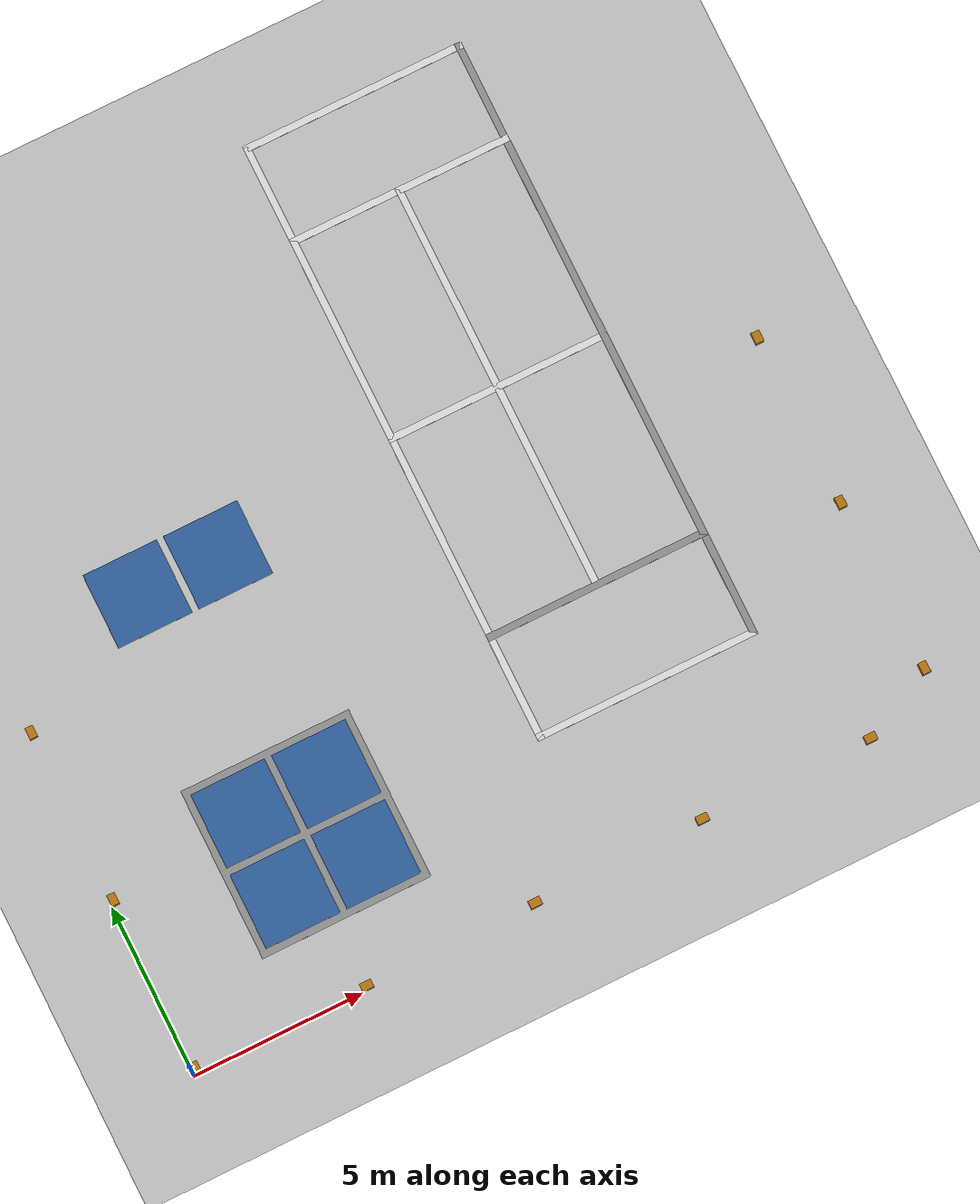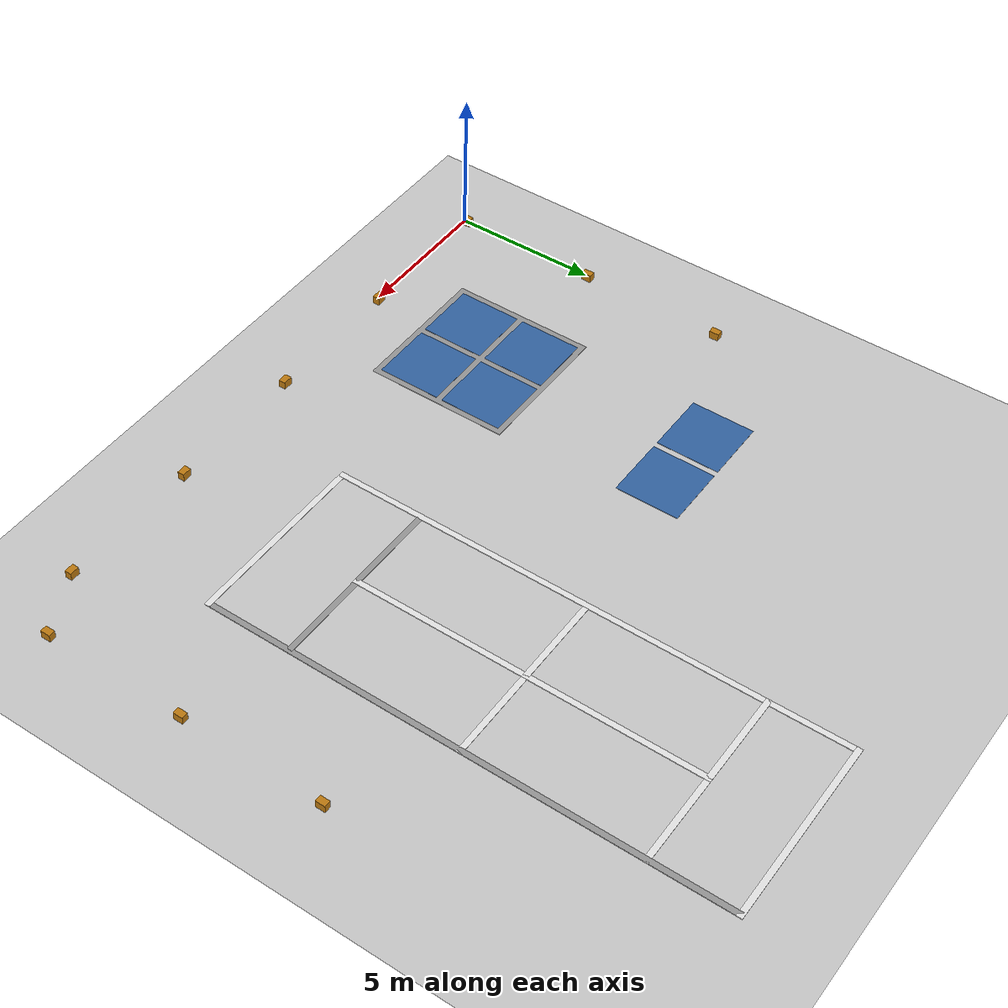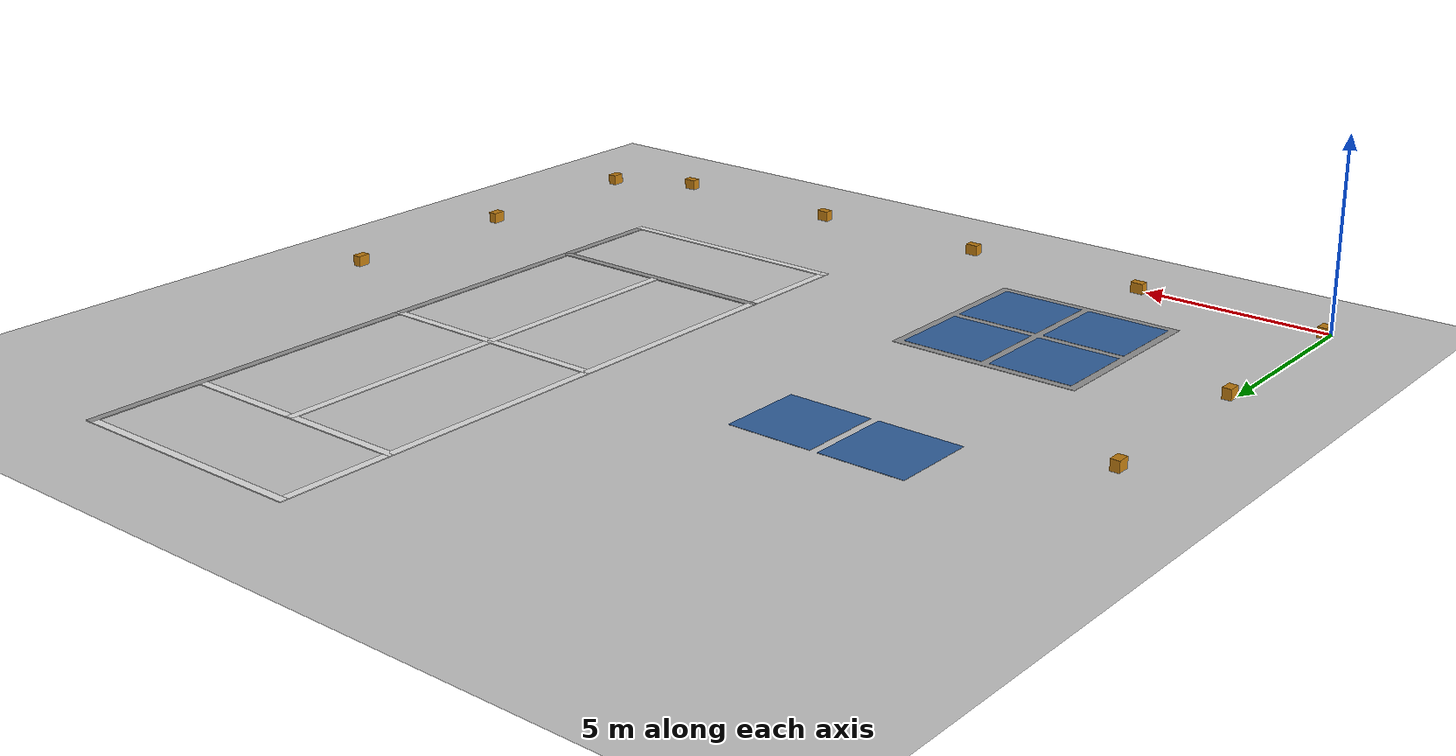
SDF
<sdf version="1.6">
 <world name="default">
  <model name="ground_plane">
   <static>1</static>
   <link name="link">
    <collision name="collision">
     <geometry><plane><normal>0 0 1</normal><size>100 100</size></plane></geometry>
     <surface>
      <contact><collide_bitmask>65535</collide_bitmask></contact>
      <friction><ode><mu>100</mu><mu2>50</mu2></ode></friction>
     </surface>
    </collision>
    <visual name="visual">
     <cast_shadows>0</cast_shadows>
     <geometry><plane><normal>0 0 1</normal><size>100 100</size></plane></geometry>
     <material>
      <script><uri>file://media/materials/scripts/gazebo.material</uri><name>Gazebo/Grey</name></script>
     </material>
    </visual>
   </link>
  </model>
  <model name="cardboard_marker">
   <link name="link">
    <inertial>
     <mass>1</mass>
     <inertia>
      <ixx>0.166667</ixx>
      <ixy>0</ixy>
      <ixz>0</ixz>
      <iyy>0.166667</iyy>
      <iyz>0</iyz>
      <izz>0.166667</izz>
     </inertia>
    </inertial>
    <visual name="visual">
     <geometry><box><size>0.335 0.232 0.28</size></box></geometry>
     <material>
      <script><name>Gazebo/Grey</name><uri>file://media/materials/scripts/gazebo.material</uri></script>
      <shader type="vertex"><normal_map>__default__</normal_map></shader>
      <ambient>0.757 0.49 0.067 1</ambient>
      <diffuse>0.757 0.49 0.067 1</diffuse>
      <specular>0.757 0.49 0.067 1</specular>
      <emissive>0 0 0 1</emissive>
     </material>
    </visual>
    <collision name="collision">
     <geometry><box><size>0.335 0.232 0.28</size></box></geometry>
     <surface>
      <friction>
       <ode><mu>1</mu><mu2>1</mu2><fdir1>0 0 0</fdir1><slip1>0</slip1><slip2>0</slip2></ode>
       <torsional>
        <coefficient>1</coefficient>
        <patch_radius>0</patch_radius>
        <surface_radius>0</surface_radius>
        <use_patch_radius>1</use_patch_radius>
        <ode><slip>0</slip></ode>
       </torsional>
      </friction>
      <bounce><restitution_coefficient>0</restitution_coefficient><threshold>1e+06</threshold></bounce>
      <contact>
       <collide_without_contact>0</collide_without_contact>
       <collide_without_contact_bitmask>1</collide_without_contact_bitmask>
       <collide_bitmask>1</collide_bitmask>
       <ode>
        <soft_cfm>0</soft_cfm>
        <soft_erp>0.2</soft_erp>
        <kp>1e+13</kp>
        <kd>1</kd>
        <max_vel>0.01</max_vel>
        <min_depth>0</min_depth>
       </ode>
       <bullet>
        <split_impulse>1</split_impulse>
        <split_impulse_penetration_threshold>-0.01</split_impulse_penetration_threshold>
        <soft_cfm>0</soft_cfm>
        <soft_erp>0.2</soft_erp>
        <kp>1e+13</kp>
        <kd>1</kd>
       </bullet>
      </contact>
     </surface>
    </collision>
   </link>
   <static>1</static>
   <pose>0.116 0.1675 0.14 0 0 -1.5708</pose>
  </model>
  <model name="cardboard_marker_clone">
   <link name="link">
    <inertial>
     <mass>1</mass>
     <inertia>
      <ixx>0.166667</ixx>
      <ixy>0</ixy>
      <ixz>0</ixz>
      <iyy>0.166667</iyy>
      <iyz>0</iyz>
      <izz>0.166667</izz>
     </inertia>
    </inertial>
    <visual name="visual">
     <geometry><box><size>0.335 0.232 0.28</size></box></geometry>
     <material>
      <script><name>Gazebo/Grey</name><uri>file://media/materials/scripts/gazebo.material</uri></script>
      <shader type="vertex"><normal_map>__default__</normal_map></shader>
      <ambient>0.757 0.49 0.067 1</ambient>
      <diffuse>0.757 0.49 0.067 1</diffuse>
      <specular>0.757 0.49 0.067 1</specular>
      <emissive>0 0 0 1</emissive>
     </material>
    </visual>
    <collision name="collision">
     <geometry><box><size>0.335 0.232 0.28</size></box></geometry>
     <surface>
      <friction>
       <ode><mu>1</mu><mu2>1</mu2><fdir1>0 0 0</fdir1><slip1>0</slip1><slip2>0</slip2></ode>
       <torsional>
        <coefficient>1</coefficient>
        <patch_radius>0</patch_radius>
        <surface_radius>0</surface_radius>
        <use_patch_radius>1</use_patch_radius>
        <ode><slip>0</slip></ode>
       </torsional>
      </friction>
      <bounce><restitution_coefficient>0</restitution_coefficient><threshold>1e+06</threshold></bounce>
      <contact>
       <collide_without_contact>0</collide_without_contact>
       <collide_without_contact_bitmask>1</collide_without_contact_bitmask>
       <collide_bitmask>1</collide_bitmask>
       <ode>
        <soft_cfm>0</soft_cfm>
        <soft_erp>0.2</soft_erp>
        <kp>1e+13</kp>
        <kd>1</kd>
        <max_vel>0.01</max_vel>
        <min_depth>0</min_depth>
       </ode>
       <bullet>
        <split_impulse>1</split_impulse>
        <split_impulse_penetration_threshold>-0.01</split_impulse_penetration_threshold>
        <soft_cfm>0</soft_cfm>
        <soft_erp>0.2</soft_erp>
        <kp>1e+13</kp>
        <kd>1</kd>
       </bullet>
      </contact>
     </surface>
    </collision>
   </link>
   <static>1</static>
   <pose>0.116 5.1675 0.14 0 0 -1.5708</pose>
  </model>
  <model name="cardboard_marker_clone_clone">
   <link name="link">
    <inertial>
     <mass>1</mass>
     <inertia>
      <ixx>0.166667</ixx>
      <ixy>0</ixy>
      <ixz>0</ixz>
      <iyy>0.166667</iyy>
      <iyz>0</iyz>
      <izz>0.166667</izz>
     </inertia>
    </inertial>
    <visual name="visual">
     <geometry><box><size>0.335 0.232 0.28</size></box></geometry>
     <material>
      <script><name>Gazebo/Grey</name><uri>file://media/materials/scripts/gazebo.material</uri></script>
      <shader type="vertex"><normal_map>__default__</normal_map></shader>
      <ambient>0.757 0.49 0.067 1</ambient>
      <diffuse>0.757 0.49 0.067 1</diffuse>
      <specular>0.757 0.49 0.067 1</specular>
      <emissive>0 0 0 1</emissive>
     </material>
    </visual>
    <collision name="collision">
     <geometry><box><size>0.335 0.232 0.28</size></box></geometry>
     <surface>
      <friction>
       <ode><mu>1</mu><mu2>1</mu2><fdir1>0 0 0</fdir1><slip1>0</slip1><slip2>0</slip2></ode>
       <torsional>
        <coefficient>1</coefficient>
        <patch_radius>0</patch_radius>
        <surface_radius>0</surface_radius>
        <use_patch_radius>1</use_patch_radius>
        <ode><slip>0</slip></ode>
       </torsional>
      </friction>
      <bounce><restitution_coefficient>0</restitution_coefficient><threshold>1e+06</threshold></bounce>
      <contact>
       <collide_without_contact>0</collide_without_contact>
       <collide_without_contact_bitmask>1</collide_without_contact_bitmask>
       <collide_bitmask>1</collide_bitmask>
       <ode>
        <soft_cfm>0</soft_cfm>
        <soft_erp>0.2</soft_erp>
        <kp>1e+13</kp>
        <kd>1</kd>
        <max_vel>0.01</max_vel>
        <min_depth>0</min_depth>
       </ode>
       <bullet>
        <split_impulse>1</split_impulse>
        <split_impulse_penetration_threshold>-0.01</split_impulse_penetration_threshold>
        <soft_cfm>0</soft_cfm>
        <soft_erp>0.2</soft_erp>
        <kp>1e+13</kp>
        <kd>1</kd>
       </bullet>
      </contact>
     </surface>
    </collision>
   </link>
   <static>1</static>
   <pose>0.116 10.1675 0.14 0 0 -1.5708</pose>
  </model>
  <model name="cardboard_marker_clone_clone_clone_clone_clone_clone_clone_clone_clone_clone">
   <link name="link">
    <inertial>
     <mass>1</mass>
     <inertia>
      <ixx>0.166667</ixx>
      <ixy>0</ixy>
      <ixz>0</ixz>
      <iyy>0.166667</iyy>
      <iyz>0</iyz>
      <izz>0.166667</izz>
     </inertia>
    </inertial>
    <visual name="visual">
     <geometry><box><size>0.335 0.232 0.28</size></box></geometry>
     <material>
      <script><name>Gazebo/Grey</name><uri>file://media/materials/scripts/gazebo.material</uri></script>
      <shader type="vertex"><normal_map>__default__</normal_map></shader>
      <ambient>0.757 0.49 0.067 1</ambient>
      <diffuse>0.757 0.49 0.067 1</diffuse>
      <specular>0.757 0.49 0.067 1</specular>
      <emissive>0 0 0 1</emissive>
     </material>
    </visual>
    <collision name="collision">
     <geometry><box><size>0.335 0.232 0.28</size></box></geometry>
     <surface>
      <friction>
       <ode><mu>1</mu><mu2>1</mu2><fdir1>0 0 0</fdir1><slip1>0</slip1><slip2>0</slip2></ode>
       <torsional>
        <coefficient>1</coefficient>
        <patch_radius>0</patch_radius>
        <surface_radius>0</surface_radius>
        <use_patch_radius>1</use_patch_radius>
        <ode><slip>0</slip></ode>
       </torsional>
      </friction>
      <bounce><restitution_coefficient>0</restitution_coefficient><threshold>1e+06</threshold></bounce>
      <contact>
       <collide_without_contact>0</collide_without_contact>
       <collide_without_contact_bitmask>1</collide_without_contact_bitmask>
       <collide_bitmask>1</collide_bitmask>
       <ode>
        <soft_cfm>0</soft_cfm>
        <soft_erp>0.2</soft_erp>
        <kp>1e+13</kp>
        <kd>1</kd>
        <max_vel>0.01</max_vel>
        <min_depth>0</min_depth>
       </ode>
       <bullet>
        <split_impulse>1</split_impulse>
        <split_impulse_penetration_threshold>-0.01</split_impulse_penetration_threshold>
        <soft_cfm>0</soft_cfm>
        <soft_erp>0.2</soft_erp>
        <kp>1e+13</kp>
        <kd>1</kd>
       </bullet>
      </contact>
     </surface>
    </collision>
   </link>
   <static>1</static>
   <pose>5.1675 0.116 0.14 0 0 -3.14158</pose>
  </model>
  <model name="cardboard_marker_clone_clone_clone_clone_clone_clone_clone_clone_clone_clone_clone">
   <link name="link">
    <inertial>
     <mass>1</mass>
     <inertia>
      <ixx>0.166667</ixx>
      <ixy>0</ixy>
      <ixz>0</ixz>
      <iyy>0.166667</iyy>
      <iyz>0</iyz>
      <izz>0.166667</izz>
     </inertia>
    </inertial>
    <visual name="visual">
     <geometry><box><size>0.335 0.232 0.28</size></box></geometry>
     <material>
      <script><name>Gazebo/Grey</name><uri>file://media/materials/scripts/gazebo.material</uri></script>
      <shader type="vertex"><normal_map>__default__</normal_map></shader>
      <ambient>0.757 0.49 0.067 1</ambient>
      <diffuse>0.757 0.49 0.067 1</diffuse>
      <specular>0.757 0.49 0.067 1</specular>
      <emissive>0 0 0 1</emissive>
     </material>
    </visual>
    <collision name="collision">
     <geometry><box><size>0.335 0.232 0.28</size></box></geometry>
     <surface>
      <friction>
       <ode><mu>1</mu><mu2>1</mu2><fdir1>0 0 0</fdir1><slip1>0</slip1><slip2>0</slip2></ode>
       <torsional>
        <coefficient>1</coefficient>
        <patch_radius>0</patch_radius>
        <surface_radius>0</surface_radius>
        <use_patch_radius>1</use_patch_radius>
        <ode><slip>0</slip></ode>
       </torsional>
      </friction>
      <bounce><restitution_coefficient>0</restitution_coefficient><threshold>1e+06</threshold></bounce>
      <contact>
       <collide_without_contact>0</collide_without_contact>
       <collide_without_contact_bitmask>1</collide_without_contact_bitmask>
       <collide_bitmask>1</collide_bitmask>
       <ode>
        <soft_cfm>0</soft_cfm>
        <soft_erp>0.2</soft_erp>
        <kp>1e+13</kp>
        <kd>1</kd>
        <max_vel>0.01</max_vel>
        <min_depth>0</min_depth>
       </ode>
       <bullet>
        <split_impulse>1</split_impulse>
        <split_impulse_penetration_threshold>-0.01</split_impulse_penetration_threshold>
        <soft_cfm>0</soft_cfm>
        <soft_erp>0.2</soft_erp>
        <kp>1e+13</kp>
        <kd>1</kd>
       </bullet>
      </contact>
     </surface>
    </collision>
   </link>
   <static>1</static>
   <pose>10.1675 0.116 0.14 0 0 -3.14158</pose>
  </model>
  <model name="cardboard_marker_clone_clone_clone_clone_clone_clone_clone_clone_clone_clone_clone_clone">
   <link name="link">
    <inertial>
     <mass>1</mass>
     <inertia>
      <ixx>0.166667</ixx>
      <ixy>0</ixy>
      <ixz>0</ixz>
      <iyy>0.166667</iyy>
      <iyz>0</iyz>
      <izz>0.166667</izz>
     </inertia>
    </inertial>
    <visual name="visual">
     <geometry><box><size>0.335 0.232 0.28</size></box></geometry>
     <material>
      <script><name>Gazebo/Grey</name><uri>file://media/materials/scripts/gazebo.material</uri></script>
      <shader type="vertex"><normal_map>__default__</normal_map></shader>
      <ambient>0.757 0.49 0.067 1</ambient>
      <diffuse>0.757 0.49 0.067 1</diffuse>
      <specular>0.757 0.49 0.067 1</specular>
      <emissive>0 0 0 1</emissive>
     </material>
    </visual>
    <collision name="collision">
     <geometry><box><size>0.335 0.232 0.28</size></box></geometry>
     <surface>
      <friction>
       <ode><mu>1</mu><mu2>1</mu2><fdir1>0 0 0</fdir1><slip1>0</slip1><slip2>0</slip2></ode>
       <torsional>
        <coefficient>1</coefficient>
        <patch_radius>0</patch_radius>
        <surface_radius>0</surface_radius>
        <use_patch_radius>1</use_patch_radius>
        <ode><slip>0</slip></ode>
       </torsional>
      </friction>
      <bounce><restitution_coefficient>0</restitution_coefficient><threshold>1e+06</threshold></bounce>
      <contact>
       <collide_without_contact>0</collide_without_contact>
       <collide_without_contact_bitmask>1</collide_without_contact_bitmask>
       <collide_bitmask>1</collide_bitmask>
       <ode>
        <soft_cfm>0</soft_cfm>
        <soft_erp>0.2</soft_erp>
        <kp>1e+13</kp>
        <kd>1</kd>
        <max_vel>0.01</max_vel>
        <min_depth>0</min_depth>
       </ode>
       <bullet>
        <split_impulse>1</split_impulse>
        <split_impulse_penetration_threshold>-0.01</split_impulse_penetration_threshold>
        <soft_cfm>0</soft_cfm>
        <soft_erp>0.2</soft_erp>
        <kp>1e+13</kp>
        <kd>1</kd>
       </bullet>
      </contact>
     </surface>
    </collision>
   </link>
   <static>1</static>
   <pose>15.1675 0.16 0.14 0 0 -3.14158</pose>
  </model>
  <model name="cardboard_marker_clone_clone_clone_clone_clone_clone_clone_clone_clone_clone_clone_clone_clone">
   <link name="link">
    <inertial>
     <mass>1</mass>
     <inertia>
      <ixx>0.166667</ixx>
      <ixy>0</ixy>
      <ixz>0</ixz>
      <iyy>0.166667</iyy>
      <iyz>0</iyz>
      <izz>0.166667</izz>
     </inertia>
    </inertial>
    <visual name="visual">
     <geometry><box><size>0.335 0.232 0.28</size></box></geometry>
     <material>
      <script><name>Gazebo/Grey</name><uri>file://media/materials/scripts/gazebo.material</uri></script>
      <shader type="vertex"><normal_map>__default__</normal_map></shader>
      <ambient>0.757 0.49 0.067 1</ambient>
      <diffuse>0.757 0.49 0.067 1</diffuse>
      <specular>0.757 0.49 0.067 1</specular>
      <emissive>0 0 0 1</emissive>
     </material>
    </visual>
    <collision name="collision">
     <geometry><box><size>0.335 0.232 0.28</size></box></geometry>
     <surface>
      <friction>
       <ode><mu>1</mu><mu2>1</mu2><fdir1>0 0 0</fdir1><slip1>0</slip1><slip2>0</slip2></ode>
       <torsional>
        <coefficient>1</coefficient>
        <patch_radius>0</patch_radius>
        <surface_radius>0</surface_radius>
        <use_patch_radius>1</use_patch_radius>
        <ode><slip>0</slip></ode>
       </torsional>
      </friction>
      <bounce><restitution_coefficient>0</restitution_coefficient><threshold>1e+06</threshold></bounce>
      <contact>
       <collide_without_contact>0</collide_without_contact>
       <collide_without_contact_bitmask>1</collide_without_contact_bitmask>
       <collide_bitmask>1</collide_bitmask>
       <ode>
        <soft_cfm>0</soft_cfm>
        <soft_erp>0.2</soft_erp>
        <kp>1e+13</kp>
        <kd>1</kd>
        <max_vel>0.01</max_vel>
        <min_depth>0</min_depth>
       </ode>
       <bullet>
        <split_impulse>1</split_impulse>
        <split_impulse_penetration_threshold>-0.01</split_impulse_penetration_threshold>
        <soft_cfm>0</soft_cfm>
        <soft_erp>0.2</soft_erp>
        <kp>1e+13</kp>
        <kd>1</kd>
       </bullet>
      </contact>
     </surface>
    </collision>
   </link>
   <static>1</static>
   <pose>20.1675 0.116 0.14 0 0 -3.14158</pose>
  </model>
  <model name="cardboard_marker_clone_0_clone_clone">
   <link name="link">
    <inertial>
     <mass>1</mass>
     <inertia>
      <ixx>0.166667</ixx>
      <ixy>0</ixy>
      <ixz>0</ixz>
      <iyy>0.166667</iyy>
      <iyz>0</iyz>
      <izz>0.166667</izz>
     </inertia>
    </inertial>
    <visual name="visual">
     <geometry><box><size>0.335 0.232 0.28</size></box></geometry>
     <material>
      <script><name>Gazebo/Grey</name><uri>file://media/materials/scripts/gazebo.material</uri></script>
      <shader type="vertex"><normal_map>__default__</normal_map></shader>
      <ambient>0.757 0.49 0.067 1</ambient>
      <diffuse>0.757 0.49 0.067 1</diffuse>
      <specular>0.757 0.49 0.067 1</specular>
      <emissive>0 0 0 1</emissive>
     </material>
    </visual>
    <collision name="collision">
     <geometry><box><size>0.335 0.232 0.28</size></box></geometry>
     <surface>
      <friction>
       <ode><mu>1</mu><mu2>1</mu2><fdir1>0 0 0</fdir1><slip1>0</slip1><slip2>0</slip2></ode>
       <torsional>
        <coefficient>1</coefficient>
        <patch_radius>0</patch_radius>
        <surface_radius>0</surface_radius>
        <use_patch_radius>1</use_patch_radius>
        <ode><slip>0</slip></ode>
       </torsional>
      </friction>
      <bounce><restitution_coefficient>0</restitution_coefficient><threshold>1e+06</threshold></bounce>
      <contact>
       <collide_without_contact>0</collide_without_contact>
       <collide_without_contact_bitmask>1</collide_without_contact_bitmask>
       <collide_bitmask>1</collide_bitmask>
       <ode>
        <soft_cfm>0</soft_cfm>
        <soft_erp>0.2</soft_erp>
        <kp>1e+13</kp>
        <kd>1</kd>
        <max_vel>0.01</max_vel>
        <min_depth>0</min_depth>
       </ode>
       <bullet>
        <split_impulse>1</split_impulse>
        <split_impulse_penetration_threshold>-0.01</split_impulse_penetration_threshold>
        <soft_cfm>0</soft_cfm>
        <soft_erp>0.2</soft_erp>
        <kp>1e+13</kp>
        <kd>1</kd>
       </bullet>
      </contact>
     </surface>
    </collision>
   </link>
   <static>1</static>
   <pose>22.304 11.164 0.14 0 0 -1.5708</pose>
  </model>
  <model name="cardboard_marker_clone_0_clone_clone_clone">
   <link name="link">
    <inertial>
     <mass>1</mass>
     <inertia>
      <ixx>0.166667</ixx>
      <ixy>0</ixy>
      <ixz>0</ixz>
      <iyy>0.166667</iyy>
      <iyz>0</iyz>
      <izz>0.166667</izz>
     </inertia>
    </inertial>
    <visual name="visual">
     <geometry><box><size>0.335 0.232 0.28</size></box></geometry>
     <material>
      <script><name>Gazebo/Grey</name><uri>file://media/materials/scripts/gazebo.material</uri></script>
      <shader type="vertex"><normal_map>__default__</normal_map></shader>
      <ambient>0.757 0.49 0.067 1</ambient>
      <diffuse>0.757 0.49 0.067 1</diffuse>
      <specular>0.757 0.49 0.067 1</specular>
      <emissive>0 0 0 1</emissive>
     </material>
    </visual>
    <collision name="collision">
     <geometry><box><size>0.335 0.232 0.28</size></box></geometry>
     <surface>
      <friction>
       <ode><mu>1</mu><mu2>1</mu2><fdir1>0 0 0</fdir1><slip1>0</slip1><slip2>0</slip2></ode>
       <torsional>
        <coefficient>1</coefficient>
        <patch_radius>0</patch_radius>
        <surface_radius>0</surface_radius>
        <use_patch_radius>1</use_patch_radius>
        <ode><slip>0</slip></ode>
       </torsional>
      </friction>
      <bounce><restitution_coefficient>0</restitution_coefficient><threshold>1e+06</threshold></bounce>
      <contact>
       <collide_without_contact>0</collide_without_contact>
       <collide_without_contact_bitmask>1</collide_without_contact_bitmask>
       <collide_bitmask>1</collide_bitmask>
       <ode>
        <soft_cfm>0</soft_cfm>
        <soft_erp>0.2</soft_erp>
        <kp>1e+13</kp>
        <kd>1</kd>
        <max_vel>0.01</max_vel>
        <min_depth>0</min_depth>
       </ode>
       <bullet>
        <split_impulse>1</split_impulse>
        <split_impulse_penetration_threshold>-0.01</split_impulse_penetration_threshold>
        <soft_cfm>0</soft_cfm>
        <soft_erp>0.2</soft_erp>
        <kp>1e+13</kp>
        <kd>1</kd>
       </bullet>
      </contact>
     </surface>
    </collision>
   </link>
   <static>1</static>
   <pose>22.304 6.164 0.14 0 0 -1.5708</pose>
  </model>
  <model name="cardboard_marker_clone_0_clone_clone_clone_clone">
   <link name="link">
    <inertial>
     <mass>1</mass>
     <inertia>
      <ixx>0.166667</ixx>
      <ixy>0</ixy>
      <ixz>0</ixz>
      <iyy>0.166667</iyy>
      <iyz>0</iyz>
      <izz>0.166667</izz>
     </inertia>
    </inertial>
    <visual name="visual">
     <geometry><box><size>0.335 0.232 0.28</size></box></geometry>
     <material>
      <script><name>Gazebo/Grey</name><uri>file://media/materials/scripts/gazebo.material</uri></script>
      <shader type="vertex"><normal_map>__default__</normal_map></shader>
      <ambient>0.757 0.49 0.067 1</ambient>
      <diffuse>0.757 0.49 0.067 1</diffuse>
      <specular>0.757 0.49 0.067 1</specular>
      <emissive>0 0 0 1</emissive>
     </material>
    </visual>
    <collision name="collision">
     <geometry><box><size>0.335 0.232 0.28</size></box></geometry>
     <surface>
      <friction>
       <ode><mu>1</mu><mu2>1</mu2><fdir1>0 0 0</fdir1><slip1>0</slip1><slip2>0</slip2></ode>
       <torsional>
        <coefficient>1</coefficient>
        <patch_radius>0</patch_radius>
        <surface_radius>0</surface_radius>
        <use_patch_radius>1</use_patch_radius>
        <ode><slip>0</slip></ode>
       </torsional>
      </friction>
      <bounce><restitution_coefficient>0</restitution_coefficient><threshold>1e+06</threshold></bounce>
      <contact>
       <collide_without_contact>0</collide_without_contact>
       <collide_without_contact_bitmask>1</collide_without_contact_bitmask>
       <collide_bitmask>1</collide_bitmask>
       <ode>
        <soft_cfm>0</soft_cfm>
        <soft_erp>0.2</soft_erp>
        <kp>1e+13</kp>
        <kd>1</kd>
        <max_vel>0.01</max_vel>
        <min_depth>0</min_depth>
       </ode>
       <bullet>
        <split_impulse>1</split_impulse>
        <split_impulse_penetration_threshold>-0.01</split_impulse_penetration_threshold>
        <soft_cfm>0</soft_cfm>
        <soft_erp>0.2</soft_erp>
        <kp>1e+13</kp>
        <kd>1</kd>
       </bullet>
      </contact>
     </surface>
    </collision>
   </link>
   <static>1</static>
   <pose>22.304 1.164 0.14 0 0 -1.5708</pose>
  </model>
  <model name="square_court">
   <link name="link">
    <inertial>
     <mass>1</mass>
     <inertia>
      <ixx>0.166667</ixx>
      <ixy>0</ixy>
      <ixz>0</ixz>
      <iyy>0.166667</iyy>
      <iyz>0</iyz>
      <izz>0.166667</izz>
     </inertia>
    </inertial>
    <visual name="visual">
     <geometry><box><size>5 5 0.01</size></box></geometry>
     <material>
      <script><name>Gazebo/Grey</name><uri>file://media/materials/scripts/gazebo.material</uri></script>
      <shader type="vertex"><normal_map>__default__</normal_map></shader>
      <ambient>0.933 0.933 0.925 1</ambient>
      <diffuse>0.933 0.933 0.925 1</diffuse>
      <specular>0.933 0.933 0.925 1</specular>
      <emissive>0.933 0.933 0.925 1</emissive>
     </material>
    </visual>
   </link>
   <static>1</static>
   <pose>5.5 4.5 0.005 0 -0 0</pose>
  </model>
  <model name="square_court_negative">
   <link name="link">
    <inertial>
     <mass>1</mass>
     <inertia>
      <ixx>0.166667</ixx>
      <ixy>0</ixy>
      <ixz>0</ixz>
      <iyy>0.166667</iyy>
      <iyz>0</iyz>
      <izz>0.166667</izz>
     </inertia>
    </inertial>
    <visual name="visual">
     <geometry><box><size>2.2 2.2 0.01</size></box></geometry>
     <material>
      <script><name>Gazebo/Grey</name><uri>file://media/materials/scripts/gazebo.material</uri></script>
      <shader type="vertex"><normal_map>__default__</normal_map></shader>
      <ambient>0.204 0.396 0.643 1</ambient>
      <diffuse>0.204 0.396 0.643 1</diffuse>
      <specular>0.204 0.396 0.643 1</specular>
      <emissive>0.204 0.396 0.643 1</emissive>
     </material>
    </visual>
   </link>
   <static>1</static>
   <pose>4.3 3.3 0.01 0 -0 0</pose>
  </model>
  <model name="square_court_negative_clone">
   <link name="link">
    <inertial>
     <mass>1</mass>
     <inertia>
      <ixx>0.166667</ixx>
      <ixy>0</ixy>
      <ixz>0</ixz>
      <iyy>0.166667</iyy>
      <iyz>0</iyz>
      <izz>0.166667</izz>
     </inertia>
    </inertial>
    <visual name="visual">
     <geometry><box><size>2.2 2.2 0.01</size></box></geometry>
     <material>
      <script><name>Gazebo/Grey</name><uri>file://media/materials/scripts/gazebo.material</uri></script>
      <shader type="vertex"><normal_map>__default__</normal_map></shader>
      <ambient>0.204 0.396 0.643 1</ambient>
      <diffuse>0.204 0.396 0.643 1</diffuse>
      <specular>0.204 0.396 0.643 1</specular>
      <emissive>0.204 0.396 0.643 1</emissive>
     </material>
    </visual>
   </link>
   <static>1</static>
   <pose>6.7 3.3 0.01 0 -0 0</pose>
  </model>
  <model name="square_court_negative_clone_0">
   <link name="link">
    <inertial>
     <mass>1</mass>
     <inertia>
      <ixx>0.166667</ixx>
      <ixy>0</ixy>
      <ixz>0</ixz>
      <iyy>0.166667</iyy>
      <iyz>0</iyz>
      <izz>0.166667</izz>
     </inertia>
    </inertial>
    <visual name="visual">
     <geometry><box><size>2.2 2.2 0.01</size></box></geometry>
     <material>
      <script><name>Gazebo/Grey</name><uri>file://media/materials/scripts/gazebo.material</uri></script>
      <shader type="vertex"><normal_map>__default__</normal_map></shader>
      <ambient>0.204 0.396 0.643 1</ambient>
      <diffuse>0.204 0.396 0.643 1</diffuse>
      <specular>0.204 0.396 0.643 1</specular>
      <emissive>0.204 0.396 0.643 1</emissive>
     </material>
    </visual>
   </link>
   <static>1</static>
   <pose>4.3 5.7 0.01 0 -0 0</pose>
  </model>
  <model name="square_court_negative_clone_1">
   <link name="link">
    <inertial>
     <mass>1</mass>
     <inertia>
      <ixx>0.166667</ixx>
      <ixy>0</ixy>
      <ixz>0</ixz>
      <iyy>0.166667</iyy>
      <iyz>0</iyz>
      <izz>0.166667</izz>
     </inertia>
    </inertial>
    <visual name="visual">
     <geometry><box><size>2.2 2.2 0.01</size></box></geometry>
     <material>
      <script><name>Gazebo/Grey</name><uri>file://media/materials/scripts/gazebo.material</uri></script>
      <shader type="vertex"><normal_map>__default__</normal_map></shader>
      <ambient>0.204 0.396 0.643 1</ambient>
      <diffuse>0.204 0.396 0.643 1</diffuse>
      <specular>0.204 0.396 0.643 1</specular>
      <emissive>0.204 0.396 0.643 1</emissive>
     </material>
    </visual>
   </link>
   <static>1</static>
   <pose>6.7 5.7 0.01 0 -0 0</pose>
  </model>
  <model name="square_court_negative_clone_0_clone">
   <link name="link">
    <inertial>
     <mass>1</mass>
     <inertia>
      <ixx>0.166667</ixx>
      <ixy>0</ixy>
      <ixz>0</ixz>
      <iyy>0.166667</iyy>
      <iyz>0</iyz>
      <izz>0.166667</izz>
     </inertia>
    </inertial>
    <visual name="visual">
     <geometry><box><size>2.2 2.2 0.01</size></box></geometry>
     <material>
      <script><name>Gazebo/Grey</name><uri>file://media/materials/scripts/gazebo.material</uri></script>
      <shader type="vertex"><normal_map>__default__</normal_map></shader>
      <ambient>0.204 0.396 0.643 1</ambient>
      <diffuse>0.204 0.396 0.643 1</diffuse>
      <specular>0.204 0.396 0.643 1</specular>
      <emissive>0.204 0.396 0.643 1</emissive>
     </material>
    </visual>
   </link>
   <static>1</static>
   <pose>4.3 12.3 0.01 0 -0 0</pose>
  </model>
  <model name="square_court_negative_clone_0_clone_2">
   <link name="link">
    <inertial>
     <mass>1</mass>
     <inertia>
      <ixx>0.166667</ixx>
      <ixy>0</ixy>
      <ixz>0</ixz>
      <iyy>0.166667</iyy>
      <iyz>0</iyz>
      <izz>0.166667</izz>
     </inertia>
    </inertial>
    <visual name="visual">
     <geometry><box><size>2.2 2.2 0.01</size></box></geometry>
     <material>
      <script><name>Gazebo/Grey</name><uri>file://media/materials/scripts/gazebo.material</uri></script>
      <shader type="vertex"><normal_map>__default__</normal_map></shader>
      <ambient>0.204 0.396 0.643 1</ambient>
      <diffuse>0.204 0.396 0.643 1</diffuse>
      <specular>0.204 0.396 0.643 1</specular>
      <emissive>0.204 0.396 0.643 1</emissive>
     </material>
    </visual>
   </link>
   <static>1</static>
   <pose>6.7 12.3 0.01 0 -0 0</pose>
  </model>
  <model name="rectangular_court">
   <link name="Wall_26">
    <pose>-8.925 4e-06 0 0 -0 1.5708</pose>
    <inertial>
     <mass>1</mass>
     <inertia><ixx>1</ixx><ixy>0</ixy><ixz>0</ixz><iyy>1</iyy><iyz>0</iyz><izz>1</izz></inertia>
    </inertial>
    <visual name="Wall_26_Visual">
     <pose>0 0 0.01 0 -0 0</pose>
     <geometry><box><size>6.58 0.2 0.02</size></box></geometry>
     <material>
      <script><uri>file://media/materials/scripts/gazebo.material</uri><name>Gazebo/White</name></script>
      <ambient>1 1 1 1</ambient>
      <shader type="vertex"><normal_map>__default__</normal_map></shader>
      <diffuse>1 1 1 1</diffuse>
      <specular>1 1 1 1</specular>
      <emissive>1 1 1 1</emissive>
     </material>
     <meta><layer>0</layer></meta>
    </visual>
   </link>
   <link name="Wall_31">
    <pose>-0.025002 3.19 0 0 -0 0</pose>
    <inertial>
     <mass>1</mass>
     <inertia><ixx>1</ixx><ixy>0</ixy><ixz>0</ixz><iyy>1</iyy><iyz>0</iyz><izz>1</izz></inertia>
    </inertial>
    <visual name="Wall_31_Visual">
     <pose>0 0 0.01 0 -0 0</pose>
     <geometry><box><size>18 0.2 0.02</size></box></geometry>
     <material>
      <script><uri>file://media/materials/scripts/gazebo.material</uri><name>Gazebo/White</name></script>
      <ambient>1 1 1 1</ambient>
      <shader type="vertex"><normal_map>__default__</normal_map></shader>
      <diffuse>1 1 1 1</diffuse>
      <specular>1 1 1 1</specular>
      <emissive>1 1 1 1</emissive>
     </material>
     <meta><layer>0</layer></meta>
    </visual>
   </link>
   <link name="Wall_36">
    <pose>0 -3.19 0 0 -0 0</pose>
    <inertial>
     <mass>1</mass>
     <inertia><ixx>1</ixx><ixy>0</ixy><ixz>0</ixz><iyy>1</iyy><iyz>0</iyz><izz>1</izz></inertia>
    </inertial>
    <visual name="Wall_36_Visual">
     <pose>0 0 0.01 0 -0 0</pose>
     <geometry><box><size>18.05 0.2 0.02</size></box></geometry>
     <material>
      <script><uri>file://media/materials/scripts/gazebo.material</uri><name>Gazebo/Grey</name></script>
      <ambient>1 1 1 1</ambient>
      <shader type="vertex"><normal_map>__default__</normal_map></shader>
      <diffuse>1 1 1 1</diffuse>
      <specular>1 1 1 1</specular>
      <emissive>1 1 1 1</emissive>
     </material>
     <meta><layer>0</layer></meta>
    </visual>
   </link>
   <link name="Wall_39">
    <pose>8.925 -3e-06 0 0 -0 1.5708</pose>
    <inertial>
     <mass>1</mass>
     <inertia><ixx>1</ixx><ixy>0</ixy><ixz>0</ixz><iyy>1</iyy><iyz>0</iyz><izz>1</izz></inertia>
    </inertial>
    <visual name="Wall_39_Visual">
     <pose>0 0 0.01 0 -0 0</pose>
     <geometry><box><size>6.58 0.2 0.02</size></box></geometry>
     <material>
      <script><uri>file://media/materials/scripts/gazebo.material</uri><name>Gazebo/White</name></script>
      <ambient>1 1 1 1</ambient>
      <shader type="vertex"><normal_map>__default__</normal_map></shader>
      <diffuse>1 1 1 1</diffuse>
      <specular>1 1 1 1</specular>
      <emissive>1 1 1 1</emissive>
     </material>
     <meta><layer>0</layer></meta>
    </visual>
   </link>
   <link name="Wall_41">
    <pose>-5.925 0 0 0 -0 1.5708</pose>
    <inertial>
     <mass>1</mass>
     <inertia><ixx>1</ixx><ixy>0</ixy><ixz>0</ixz><iyy>1</iyy><iyz>0</iyz><izz>1</izz></inertia>
    </inertial>
    <visual name="Wall_41_Visual">
     <pose>0 0 0.01 0 -0 0</pose>
     <geometry><box><size>6.58 0.2 0.02</size></box></geometry>
     <material>
      <script><uri>file://media/materials/scripts/gazebo.material</uri><name>Gazebo/Grey</name></script>
      <ambient>1 1 1 1</ambient>
      <diffuse>1 1 1 1</diffuse>
      <shader type="vertex"><normal_map>__default__</normal_map></shader>
      <specular>1 1 1 1</specular>
      <emissive>1 1 1 1</emissive>
     </material>
     <meta><layer>0</layer></meta>
    </visual>
   </link>
   <link name="Wall_43">
    <pose>0.075001 0 0 0 -0 1.5708</pose>
    <inertial>
     <mass>1</mass>
     <inertia><ixx>1</ixx><ixy>0</ixy><ixz>0</ixz><iyy>1</iyy><iyz>0</iyz><izz>1</izz></inertia>
    </inertial>
    <visual name="Wall_43_Visual">
     <pose>0 0 0.01 0 -0 0</pose>
     <geometry><box><size>6.58 0.2 0.02</size></box></geometry>
     <material>
      <script><uri>file://media/materials/scripts/gazebo.material</uri><name>Gazebo/White</name></script>
      <ambient>1 1 1 1</ambient>
      <shader type="vertex"><normal_map>__default__</normal_map></shader>
      <diffuse>1 1 1 1</diffuse>
      <specular>1 1 1 1</specular>
      <emissive>1 1 1 1</emissive>
     </material>
     <meta><layer>0</layer></meta>
    </visual>
   </link>
   <link name="Wall_45">
    <pose>6.075 -1e-06 0 0 -0 1.5708</pose>
    <inertial>
     <mass>1</mass>
     <inertia><ixx>1</ixx><ixy>0</ixy><ixz>0</ixz><iyy>1</iyy><iyz>0</iyz><izz>1</izz></inertia>
    </inertial>
    <visual name="Wall_45_Visual">
     <pose>0 0 0.01 0 -0 0</pose>
     <geometry><box><size>6.58 0.2 0.02</size></box></geometry>
     <material>
      <script><uri>file://media/materials/scripts/gazebo.material</uri><name>Gazebo/White</name></script>
      <ambient>1 1 1 1</ambient>
      <shader type="vertex"><normal_map>__default__</normal_map></shader>
      <diffuse>1 1 1 1</diffuse>
      <specular>1 1 1 1</specular>
      <emissive>1 1 1 1</emissive>
     </material>
     <meta><layer>0</layer></meta>
    </visual>
   </link>
   <link name="Wall_47">
    <pose>0.075001 0.006 0 0 -0 0</pose>
    <inertial>
     <mass>1</mass>
     <inertia><ixx>1</ixx><ixy>0</ixy><ixz>0</ixz><iyy>1</iyy><iyz>0</iyz><izz>1</izz></inertia>
    </inertial>
    <visual name="Wall_47_Visual">
     <pose>0 0 0.01 0 -0 0</pose>
     <geometry><box><size>12.2 0.2 0.02</size></box></geometry>
     <material>
      <script><uri>file://media/materials/scripts/gazebo.material</uri><name>Gazebo/White</name></script>
      <ambient>1 1 1 1</ambient>
      <shader type="vertex"><normal_map>__default__</normal_map></shader>
      <diffuse>1 1 1 1</diffuse>
      <specular>1 1 1 1</specular>
      <emissive>1 1 1 1</emissive>
     </material>
     <meta><layer>0</layer></meta>
    </visual>
   </link>
   <static>1</static>
   <pose>15.46 13 0 0 -0 1.57079</pose>
  </model>
 </world>
</sdf>
